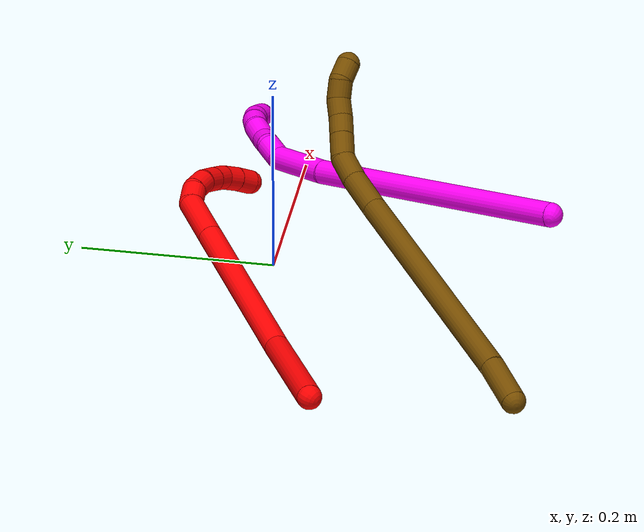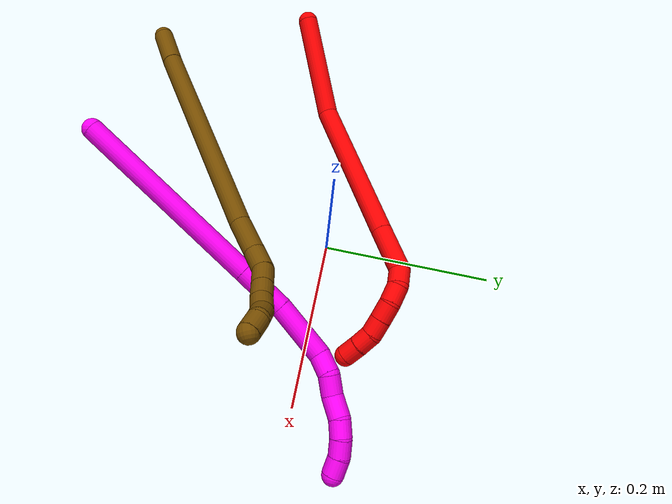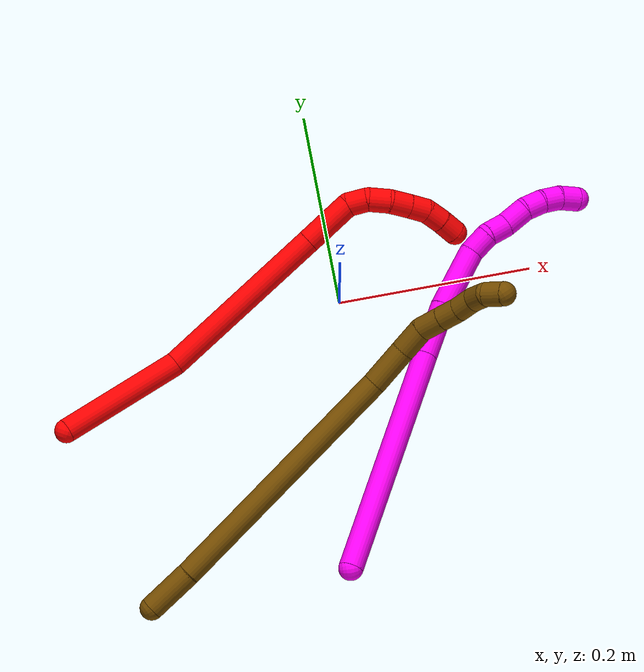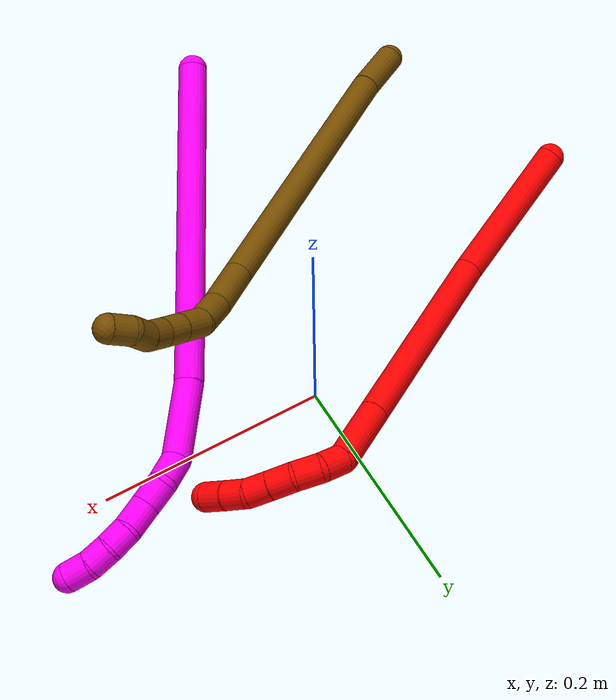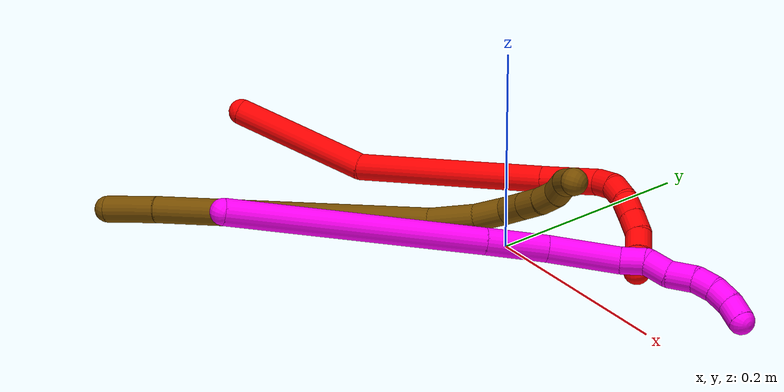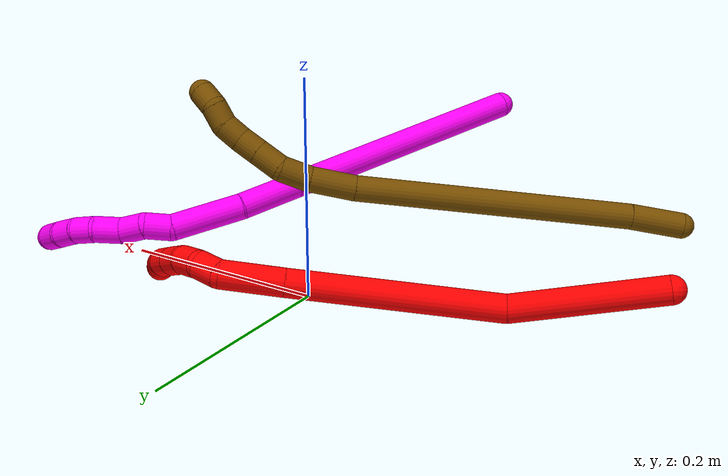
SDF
<sdf version="1.7">
 <world name="default">
  <model name="2">
   <static>0</static>
   <link name="2">
    <collision name="collision-cylinder-e_1_1_4">
     <pose>0.040327 0.018699 -0.050124 -2.78453 0.645927 -2.15261</pose>
     <geometry><cylinder><radius>0.0125</radius><length>0.133991</length></cylinder></geometry>
     <surface>
      <friction><ode><mu>1.16</mu><mu2>1.16</mu2><slip1>0</slip1><slip2>0</slip2></ode></friction>
      <contact><ode><kp>1e+06</kp><kd>1</kd><max_vel>0</max_vel><min_depth>0.001</min_depth></ode></contact>
     </surface>
    </collision>
    <visual name="visual-cylinder-e_1_1_4">
     <pose>0.040327 0.018699 -0.050124 -2.78453 0.645927 -2.15261</pose>
     <geometry><cylinder><radius>0.0125</radius><length>0.133991</length></cylinder></geometry>
     <material><ambient>1 0 0 1</ambient></material>
    </visual>
    <collision name="collision-cylinder-e_2_4_5">
     <pose>0.108208 0.071814 -0.181865 -2.74254 0.301584 -1.28879</pose>
     <geometry><cylinder><radius>0.0125</radius><length>0.185525</length></cylinder></geometry>
     <surface>
      <friction><ode><mu>1.16</mu><mu2>1.16</mu2><slip1>0</slip1><slip2>0</slip2></ode></friction>
      <contact><ode><kp>1e+06</kp><kd>1</kd><max_vel>0</max_vel><min_depth>0.001</min_depth></ode></contact>
     </surface>
    </collision>
    <visual name="visual-cylinder-e_2_4_5">
     <pose>0.108208 0.071814 -0.181865 -2.74254 0.301584 -1.28879</pose>
     <geometry><cylinder><radius>0.0125</radius><length>0.185525</length></cylinder></geometry>
     <material><ambient>1 0 0 1</ambient></material>
    </visual>
    <collision name="collision-cylinder-e_3_5_6">
     <pose>0.143556 0.116607 -0.287785 -2.73803 0.286842 -1.22942</pose>
     <geometry><cylinder><radius>0.0125</radius><length>0.055104</length></cylinder></geometry>
     <surface>
      <friction><ode><mu>1.16</mu><mu2>1.16</mu2><slip1>0</slip1><slip2>0</slip2></ode></friction>
      <contact><ode><kp>1e+06</kp><kd>1</kd><max_vel>0</max_vel><min_depth>0.001</min_depth></ode></contact>
     </surface>
    </collision>
    <visual name="visual-cylinder-e_3_5_6">
     <pose>0.143556 0.116607 -0.287785 -2.73803 0.286842 -1.22942</pose>
     <geometry><cylinder><radius>0.0125</radius><length>0.055104</length></cylinder></geometry>
     <material><ambient>1 0 0 1</ambient></material>
    </visual>
    <collision name="collision-cylinder-e_4_6_7">
     <pose>0.155656 0.134859 -0.317849 -2.20243 0.415483 -0.787399</pose>
     <geometry><cylinder><radius>0.0125</radius><length>0.021327</length></cylinder></geometry>
     <surface>
      <friction><ode><mu>1.16</mu><mu2>1.16</mu2><slip1>0</slip1><slip2>0</slip2></ode></friction>
      <contact><ode><kp>1e+06</kp><kd>1</kd><max_vel>0</max_vel><min_depth>0.001</min_depth></ode></contact>
     </surface>
    </collision>
    <visual name="visual-cylinder-e_4_6_7">
     <pose>0.155656 0.134859 -0.317849 -2.20243 0.415483 -0.787399</pose>
     <geometry><cylinder><radius>0.0125</radius><length>0.021327</length></cylinder></geometry>
     <material><ambient>1 0 0 1</ambient></material>
    </visual>
    <collision name="collision-cylinder-e_5_7_8">
     <pose>0.167758 0.150279 -0.326416 -1.92677 0.769457 -1.05496</pose>
     <geometry><cylinder><radius>0.0125</radius><length>0.022417</length></cylinder></geometry>
     <surface>
      <friction><ode><mu>1.16</mu><mu2>1.16</mu2><slip1>0</slip1><slip2>0</slip2></ode></friction>
      <contact><ode><kp>1e+06</kp><kd>1</kd><max_vel>0</max_vel><min_depth>0.001</min_depth></ode></contact>
     </surface>
    </collision>
    <visual name="visual-cylinder-e_5_7_8">
     <pose>0.167758 0.150279 -0.326416 -1.92677 0.769457 -1.05496</pose>
     <geometry><cylinder><radius>0.0125</radius><length>0.022417</length></cylinder></geometry>
     <material><ambient>1 0 0 1</ambient></material>
    </visual>
    <collision name="collision-cylinder-e_6_8_9">
     <pose>0.184715 0.163241 -0.33036 -1.77795 1.02727 -1.21477</pose>
     <geometry><cylinder><radius>0.0125</radius><length>0.021402</length></cylinder></geometry>
     <surface>
      <friction><ode><mu>1.16</mu><mu2>1.16</mu2><slip1>0</slip1><slip2>0</slip2></ode></friction>
      <contact><ode><kp>1e+06</kp><kd>1</kd><max_vel>0</max_vel><min_depth>0.001</min_depth></ode></contact>
     </surface>
    </collision>
    <visual name="visual-cylinder-e_6_8_9">
     <pose>0.184715 0.163241 -0.33036 -1.77795 1.02727 -1.21477</pose>
     <geometry><cylinder><radius>0.0125</radius><length>0.021402</length></cylinder></geometry>
     <material><ambient>1 0 0 1</ambient></material>
    </visual>
    <collision name="collision-cylinder-e_7_9_10">
     <pose>0.202538 0.173688 -0.332304 -1.72971 1.03917 -1.18198</pose>
     <geometry><cylinder><radius>0.0125</radius><length>0.020102</length></cylinder></geometry>
     <surface>
      <friction><ode><mu>1.16</mu><mu2>1.16</mu2><slip1>0</slip1><slip2>0</slip2></ode></friction>
      <contact><ode><kp>1e+06</kp><kd>1</kd><max_vel>0</max_vel><min_depth>0.001</min_depth></ode></contact>
     </surface>
    </collision>
    <visual name="visual-cylinder-e_7_9_10">
     <pose>0.202538 0.173688 -0.332304 -1.72971 1.03917 -1.18198</pose>
     <geometry><cylinder><radius>0.0125</radius><length>0.020102</length></cylinder></geometry>
     <material><ambient>1 0 0 1</ambient></material>
    </visual>
    <collision name="collision-cylinder-e_8_10_11">
     <pose>0.219758 0.183375 -0.330746 -1.10082 1.02282 -0.663351</pose>
     <geometry><cylinder><radius>0.0125</radius><length>0.020047</length></cylinder></geometry>
     <surface>
      <friction><ode><mu>1.16</mu><mu2>1.16</mu2><slip1>0</slip1><slip2>0</slip2></ode></friction>
      <contact><ode><kp>1e+06</kp><kd>1</kd><max_vel>0</max_vel><min_depth>0.001</min_depth></ode></contact>
     </surface>
    </collision>
    <visual name="visual-cylinder-e_8_10_11">
     <pose>0.219758 0.183375 -0.330746 -1.10082 1.02282 -0.663351</pose>
     <geometry><cylinder><radius>0.0125</radius><length>0.020047</length></cylinder></geometry>
     <material><ambient>1 0 0 1</ambient></material>
    </visual>
    <collision name="collision-cylinder-e_9_11_2">
     <pose>0.236997 0.192108 -0.32541 -0.941256 1.04442 -0.569653</pose>
     <geometry><cylinder><radius>0.0125</radius><length>0.020084</length></cylinder></geometry>
     <surface>
      <friction><ode><mu>1.16</mu><mu2>1.16</mu2><slip1>0</slip1><slip2>0</slip2></ode></friction>
      <contact><ode><kp>1e+06</kp><kd>1</kd><max_vel>0</max_vel><min_depth>0.001</min_depth></ode></contact>
     </surface>
    </collision>
    <visual name="visual-cylinder-e_9_11_2">
     <pose>0.236997 0.192108 -0.32541 -0.941256 1.04442 -0.569653</pose>
     <geometry><cylinder><radius>0.0125</radius><length>0.020084</length></cylinder></geometry>
     <material><ambient>1 0 0 1</ambient></material>
    </visual>
    <collision name="collision-sphere-2">
     <pose>0.24568 0.196187 -0.32244 0 -0 0</pose>
     <geometry><sphere><radius>0.0125</radius></sphere></geometry>
     <surface>
      <friction><ode><mu>1.16</mu><mu2>1.16</mu2><slip1>0</slip1><slip2>0</slip2></ode></friction>
      <contact><ode><kp>1e+06</kp><kd>1</kd><max_vel>0</max_vel><min_depth>0.001</min_depth></ode></contact>
     </surface>
    </collision>
    <visual name="visual-sphere-2">
     <pose>0.24568 0.196187 -0.32244 0 -0 0</pose>
     <geometry><sphere><radius>0.0125</radius></sphere></geometry>
     <material><ambient>1 0 0 1</ambient></material>
    </visual>
    <collision name="collision-sphere-11">
     <pose>0.228314 0.18803 -0.328381 0 -0 0</pose>
     <geometry><sphere><radius>0.0125</radius></sphere></geometry>
     <surface>
      <friction><ode><mu>1.16</mu><mu2>1.16</mu2><slip1>0</slip1><slip2>0</slip2></ode></friction>
      <contact><ode><kp>1e+06</kp><kd>1</kd><max_vel>0</max_vel><min_depth>0.001</min_depth></ode></contact>
     </surface>
    </collision>
    <visual name="visual-sphere-11">
     <pose>0.228314 0.18803 -0.328381 0 -0 0</pose>
     <geometry><sphere><radius>0.0125</radius></sphere></geometry>
     <material><ambient>1 0 0 1</ambient></material>
    </visual>
    <collision name="collision-sphere-10">
     <pose>0.211202 0.178719 -0.333111 0 -0 0</pose>
     <geometry><sphere><radius>0.0125</radius></sphere></geometry>
     <surface>
      <friction><ode><mu>1.16</mu><mu2>1.16</mu2><slip1>0</slip1><slip2>0</slip2></ode></friction>
      <contact><ode><kp>1e+06</kp><kd>1</kd><max_vel>0</max_vel><min_depth>0.001</min_depth></ode></contact>
     </surface>
    </collision>
    <visual name="visual-sphere-10">
     <pose>0.211202 0.178719 -0.333111 0 -0 0</pose>
     <geometry><sphere><radius>0.0125</radius></sphere></geometry>
     <material><ambient>1 0 0 1</ambient></material>
    </visual>
    <collision name="collision-sphere-9">
     <pose>0.193874 0.168657 -0.331498 0 -0 0</pose>
     <geometry><sphere><radius>0.0125</radius></sphere></geometry>
     <surface>
      <friction><ode><mu>1.16</mu><mu2>1.16</mu2><slip1>0</slip1><slip2>0</slip2></ode></friction>
      <contact><ode><kp>1e+06</kp><kd>1</kd><max_vel>0</max_vel><min_depth>0.001</min_depth></ode></contact>
     </surface>
    </collision>
    <visual name="visual-sphere-9">
     <pose>0.193874 0.168657 -0.331498 0 -0 0</pose>
     <geometry><sphere><radius>0.0125</radius></sphere></geometry>
     <material><ambient>1 0 0 1</ambient></material>
    </visual>
    <collision name="collision-sphere-4">
     <pose>0.080654 0.037398 -0.100249 0 -0 0</pose>
     <geometry><sphere><radius>0.0125</radius></sphere></geometry>
     <surface>
      <friction><ode><mu>1.16</mu><mu2>1.16</mu2><slip1>0</slip1><slip2>0</slip2></ode></friction>
      <contact><ode><kp>1e+06</kp><kd>1</kd><max_vel>0</max_vel><min_depth>0.001</min_depth></ode></contact>
     </surface>
    </collision>
    <visual name="visual-sphere-4">
     <pose>0.080654 0.037398 -0.100249 0 -0 0</pose>
     <geometry><sphere><radius>0.0125</radius></sphere></geometry>
     <material><ambient>1 0 0 1</ambient></material>
    </visual>
    <collision name="collision-sphere-1">
     <geometry><sphere><radius>0.0125</radius></sphere></geometry>
     <surface>
      <friction><ode><mu>1.16</mu><mu2>1.16</mu2><slip1>0</slip1><slip2>0</slip2></ode></friction>
      <contact><ode><kp>1e+06</kp><kd>1</kd><max_vel>0</max_vel><min_depth>0.001</min_depth></ode></contact>
     </surface>
    </collision>
    <visual name="visual-sphere-1">
     <geometry><sphere><radius>0.0125</radius></sphere></geometry>
     <material><ambient>1 0 0 1</ambient></material>
    </visual>
    <collision name="collision-sphere-8">
     <pose>0.175556 0.157825 -0.329221 0 -0 0</pose>
     <geometry><sphere><radius>0.0125</radius></sphere></geometry>
     <surface>
      <friction><ode><mu>1.16</mu><mu2>1.16</mu2><slip1>0</slip1><slip2>0</slip2></ode></friction>
      <contact><ode><kp>1e+06</kp><kd>1</kd><max_vel>0</max_vel><min_depth>0.001</min_depth></ode></contact>
     </surface>
    </collision>
    <visual name="visual-sphere-8">
     <pose>0.175556 0.157825 -0.329221 0 -0 0</pose>
     <geometry><sphere><radius>0.0125</radius></sphere></geometry>
     <material><ambient>1 0 0 1</ambient></material>
    </visual>
    <collision name="collision-sphere-5">
     <pose>0.135761 0.10623 -0.263481 0 -0 0</pose>
     <geometry><sphere><radius>0.0125</radius></sphere></geometry>
     <surface>
      <friction><ode><mu>1.16</mu><mu2>1.16</mu2><slip1>0</slip1><slip2>0</slip2></ode></friction>
      <contact><ode><kp>1e+06</kp><kd>1</kd><max_vel>0</max_vel><min_depth>0.001</min_depth></ode></contact>
     </surface>
    </collision>
    <visual name="visual-sphere-5">
     <pose>0.135761 0.10623 -0.263481 0 -0 0</pose>
     <geometry><sphere><radius>0.0125</radius></sphere></geometry>
     <material><ambient>1 0 0 1</ambient></material>
    </visual>
    <collision name="collision-sphere-6">
     <pose>0.151352 0.126985 -0.312088 0 -0 0</pose>
     <geometry><sphere><radius>0.0125</radius></sphere></geometry>
     <surface>
      <friction><ode><mu>1.16</mu><mu2>1.16</mu2><slip1>0</slip1><slip2>0</slip2></ode></friction>
      <contact><ode><kp>1e+06</kp><kd>1</kd><max_vel>0</max_vel><min_depth>0.001</min_depth></ode></contact>
     </surface>
    </collision>
    <visual name="visual-sphere-6">
     <pose>0.151352 0.126985 -0.312088 0 -0 0</pose>
     <geometry><sphere><radius>0.0125</radius></sphere></geometry>
     <material><ambient>1 0 0 1</ambient></material>
    </visual>
    <collision name="collision-sphere-7">
     <pose>0.15996 0.142733 -0.32361 0 -0 0</pose>
     <geometry><sphere><radius>0.0125</radius></sphere></geometry>
     <surface>
      <friction><ode><mu>1.16</mu><mu2>1.16</mu2><slip1>0</slip1><slip2>0</slip2></ode></friction>
      <contact><ode><kp>1e+06</kp><kd>1</kd><max_vel>0</max_vel><min_depth>0.001</min_depth></ode></contact>
     </surface>
    </collision>
    <visual name="visual-sphere-7">
     <pose>0.15996 0.142733 -0.32361 0 -0 0</pose>
     <geometry><sphere><radius>0.0125</radius></sphere></geometry>
     <material><ambient>1 0 0 1</ambient></material>
    </visual>
    <inertial>
     <pose>0.11532 0.086038 -0.194655 0 -0 0</pose>
     <mass>0.5</mass>
     <inertia>
      <ixx>-0.00057</ixx>
      <ixy>0</ixy>
      <ixz>0</ixz>
      <iyy>-0.00057</iyy>
      <iyz>0</iyz>
      <izz>-0.00059</izz>
     </inertia>
    </inertial>
   </link>
   <pose>-0.297897 -0.087503 0.045761 1.83597 0.919744 -0.310313</pose>
  </model>
  <model name="10">
   <static>0</static>
   <link name="10">
    <collision name="collision-cylinder-e_1_1_4">
     <pose>0.096606 0.048582 0.051706 -0.754259 0.937345 -0.395826</pose>
     <geometry><cylinder><radius>0.0125</radius><length>0.23972</length></cylinder></geometry>
     <surface>
      <friction><ode><mu>1.16</mu><mu2>1.16</mu2><slip1>0</slip1><slip2>0</slip2></ode></friction>
      <contact><ode><kp>1e+06</kp><kd>1</kd><max_vel>0</max_vel><min_depth>0.001</min_depth></ode></contact>
     </surface>
    </collision>
    <visual name="visual-cylinder-e_1_1_4">
     <pose>0.096606 0.048582 0.051706 -0.754259 0.937345 -0.395826</pose>
     <geometry><cylinder><radius>0.0125</radius><length>0.23972</length></cylinder></geometry>
     <material><ambient>1 0 0.964706 1</ambient></material>
    </visual>
    <collision name="collision-cylinder-e_2_4_5">
     <pose>0.216507 0.108697 0.116095 -0.737905 0.936391 -0.386192</pose>
     <geometry><cylinder><radius>0.0125</radius><length>0.057845</length></cylinder></geometry>
     <surface>
      <friction><ode><mu>1.16</mu><mu2>1.16</mu2><slip1>0</slip1><slip2>0</slip2></ode></friction>
      <contact><ode><kp>1e+06</kp><kd>1</kd><max_vel>0</max_vel><min_depth>0.001</min_depth></ode></contact>
     </surface>
    </collision>
    <visual name="visual-cylinder-e_2_4_5">
     <pose>0.216507 0.108697 0.116095 -0.737905 0.936391 -0.386192</pose>
     <geometry><cylinder><radius>0.0125</radius><length>0.057845</length></cylinder></geometry>
     <material><ambient>1 0 0.964706 1</ambient></material>
    </visual>
    <collision name="collision-cylinder-e_3_5_6">
     <pose>0.265158 0.13279 0.14757 -0.589241 0.842739 -0.270365</pose>
     <geometry><cylinder><radius>0.0125</radius><length>0.067936</length></cylinder></geometry>
     <surface>
      <friction><ode><mu>1.16</mu><mu2>1.16</mu2><slip1>0</slip1><slip2>0</slip2></ode></friction>
      <contact><ode><kp>1e+06</kp><kd>1</kd><max_vel>0</max_vel><min_depth>0.001</min_depth></ode></contact>
     </surface>
    </collision>
    <visual name="visual-cylinder-e_3_5_6">
     <pose>0.265158 0.13279 0.14757 -0.589241 0.842739 -0.270365</pose>
     <geometry><cylinder><radius>0.0125</radius><length>0.067936</length></cylinder></geometry>
     <material><ambient>1 0 0.964706 1</ambient></material>
    </visual>
    <collision name="collision-cylinder-e_4_6_7">
     <pose>0.295768 0.150888 0.176091 -0.517395 0.438845 -0.117894</pose>
     <geometry><cylinder><radius>0.0125</radius><length>0.024733</length></cylinder></geometry>
     <surface>
      <friction><ode><mu>1.16</mu><mu2>1.16</mu2><slip1>0</slip1><slip2>0</slip2></ode></friction>
      <contact><ode><kp>1e+06</kp><kd>1</kd><max_vel>0</max_vel><min_depth>0.001</min_depth></ode></contact>
     </surface>
    </collision>
    <visual name="visual-cylinder-e_4_6_7">
     <pose>0.295768 0.150888 0.176091 -0.517395 0.438845 -0.117894</pose>
     <geometry><cylinder><radius>0.0125</radius><length>0.024733</length></cylinder></geometry>
     <material><ambient>1 0 0.964706 1</ambient></material>
    </visual>
    <collision name="collision-cylinder-e_5_7_8">
     <pose>0.307004 0.156447 0.195664 -0.00213 0.546003 -0.000596</pose>
     <geometry><cylinder><radius>0.0125</radius><length>0.023038</length></cylinder></geometry>
     <surface>
      <friction><ode><mu>1.16</mu><mu2>1.16</mu2><slip1>0</slip1><slip2>0</slip2></ode></friction>
      <contact><ode><kp>1e+06</kp><kd>1</kd><max_vel>0</max_vel><min_depth>0.001</min_depth></ode></contact>
     </surface>
    </collision>
    <visual name="visual-cylinder-e_5_7_8">
     <pose>0.307004 0.156447 0.195664 -0.00213 0.546003 -0.000596</pose>
     <geometry><cylinder><radius>0.0125</radius><length>0.023038</length></cylinder></geometry>
     <material><ambient>1 0 0.964706 1</ambient></material>
    </visual>
    <collision name="collision-cylinder-e_6_8_9">
     <pose>0.318321 0.16061 0.216622 -0.356759 0.42269 -0.077326</pose>
     <geometry><cylinder><radius>0.0125</radius><length>0.02601</length></cylinder></geometry>
     <surface>
      <friction><ode><mu>1.16</mu><mu2>1.16</mu2><slip1>0</slip1><slip2>0</slip2></ode></friction>
      <contact><ode><kp>1e+06</kp><kd>1</kd><max_vel>0</max_vel><min_depth>0.001</min_depth></ode></contact>
     </surface>
    </collision>
    <visual name="visual-cylinder-e_6_8_9">
     <pose>0.318321 0.16061 0.216622 -0.356759 0.42269 -0.077326</pose>
     <geometry><cylinder><radius>0.0125</radius><length>0.02601</length></cylinder></geometry>
     <material><ambient>1 0 0.964706 1</ambient></material>
    </visual>
    <collision name="collision-cylinder-e_7_9_10">
     <pose>0.327547 0.164982 0.237034 -0.024768 0.396279 -0.004973</pose>
     <geometry><cylinder><radius>0.0125</radius><length>0.020166</length></cylinder></geometry>
     <surface>
      <friction><ode><mu>1.16</mu><mu2>1.16</mu2><slip1>0</slip1><slip2>0</slip2></ode></friction>
      <contact><ode><kp>1e+06</kp><kd>1</kd><max_vel>0</max_vel><min_depth>0.001</min_depth></ode></contact>
     </surface>
    </collision>
    <visual name="visual-cylinder-e_7_9_10">
     <pose>0.327547 0.164982 0.237034 -0.024768 0.396279 -0.004973</pose>
     <geometry><cylinder><radius>0.0125</radius><length>0.020166</length></cylinder></geometry>
     <material><ambient>1 0 0.964706 1</ambient></material>
    </visual>
    <collision name="collision-cylinder-e_8_10_11">
     <pose>0.335255 0.163082 0.255354 0.231924 0.390534 0.04607</pose>
     <geometry><cylinder><radius>0.0125</radius><length>0.020047</length></cylinder></geometry>
     <surface>
      <friction><ode><mu>1.16</mu><mu2>1.16</mu2><slip1>0</slip1><slip2>0</slip2></ode></friction>
      <contact><ode><kp>1e+06</kp><kd>1</kd><max_vel>0</max_vel><min_depth>0.001</min_depth></ode></contact>
     </surface>
    </collision>
    <visual name="visual-cylinder-e_8_10_11">
     <pose>0.335255 0.163082 0.255354 0.231924 0.390534 0.04607</pose>
     <geometry><cylinder><radius>0.0125</radius><length>0.020047</length></cylinder></geometry>
     <material><ambient>1 0 0.964706 1</ambient></material>
    </visual>
    <collision name="collision-cylinder-e_9_11_2">
     <pose>0.341284 0.1567 0.273437 0.438687 0.217609 0.048694</pose>
     <geometry><cylinder><radius>0.0125</radius><length>0.020505</length></cylinder></geometry>
     <surface>
      <friction><ode><mu>1.16</mu><mu2>1.16</mu2><slip1>0</slip1><slip2>0</slip2></ode></friction>
      <contact><ode><kp>1e+06</kp><kd>1</kd><max_vel>0</max_vel><min_depth>0.001</min_depth></ode></contact>
     </surface>
    </collision>
    <visual name="visual-cylinder-e_9_11_2">
     <pose>0.341284 0.1567 0.273437 0.438687 0.217609 0.048694</pose>
     <geometry><cylinder><radius>0.0125</radius><length>0.020505</length></cylinder></geometry>
     <material><ambient>1 0 0.964706 1</ambient></material>
    </visual>
    <collision name="collision-sphere-2">
     <pose>0.343498 0.152448 0.2825 0 -0 0</pose>
     <geometry><sphere><radius>0.0125</radius></sphere></geometry>
     <surface>
      <friction><ode><mu>1.16</mu><mu2>1.16</mu2><slip1>0</slip1><slip2>0</slip2></ode></friction>
      <contact><ode><kp>1e+06</kp><kd>1</kd><max_vel>0</max_vel><min_depth>0.001</min_depth></ode></contact>
     </surface>
    </collision>
    <visual name="visual-sphere-2">
     <pose>0.343498 0.152448 0.2825 0 -0 0</pose>
     <geometry><sphere><radius>0.0125</radius></sphere></geometry>
     <material><ambient>1 0 0.964706 1</ambient></material>
    </visual>
    <collision name="collision-sphere-11">
     <pose>0.339071 0.160952 0.264374 0 -0 0</pose>
     <geometry><sphere><radius>0.0125</radius></sphere></geometry>
     <surface>
      <friction><ode><mu>1.16</mu><mu2>1.16</mu2><slip1>0</slip1><slip2>0</slip2></ode></friction>
      <contact><ode><kp>1e+06</kp><kd>1</kd><max_vel>0</max_vel><min_depth>0.001</min_depth></ode></contact>
     </surface>
    </collision>
    <visual name="visual-sphere-11">
     <pose>0.339071 0.160952 0.264374 0 -0 0</pose>
     <geometry><sphere><radius>0.0125</radius></sphere></geometry>
     <material><ambient>1 0 0.964706 1</ambient></material>
    </visual>
    <collision name="collision-sphere-10">
     <pose>0.331439 0.165212 0.246333 0 -0 0</pose>
     <geometry><sphere><radius>0.0125</radius></sphere></geometry>
     <surface>
      <friction><ode><mu>1.16</mu><mu2>1.16</mu2><slip1>0</slip1><slip2>0</slip2></ode></friction>
      <contact><ode><kp>1e+06</kp><kd>1</kd><max_vel>0</max_vel><min_depth>0.001</min_depth></ode></contact>
     </surface>
    </collision>
    <visual name="visual-sphere-10">
     <pose>0.331439 0.165212 0.246333 0 -0 0</pose>
     <geometry><sphere><radius>0.0125</radius></sphere></geometry>
     <material><ambient>1 0 0.964706 1</ambient></material>
    </visual>
    <collision name="collision-sphere-9">
     <pose>0.323655 0.164752 0.227735 0 -0 0</pose>
     <geometry><sphere><radius>0.0125</radius></sphere></geometry>
     <surface>
      <friction><ode><mu>1.16</mu><mu2>1.16</mu2><slip1>0</slip1><slip2>0</slip2></ode></friction>
      <contact><ode><kp>1e+06</kp><kd>1</kd><max_vel>0</max_vel><min_depth>0.001</min_depth></ode></contact>
     </surface>
    </collision>
    <visual name="visual-sphere-9">
     <pose>0.323655 0.164752 0.227735 0 -0 0</pose>
     <geometry><sphere><radius>0.0125</radius></sphere></geometry>
     <material><ambient>1 0 0.964706 1</ambient></material>
    </visual>
    <collision name="collision-sphere-4">
     <pose>0.193212 0.097164 0.103412 0 -0 0</pose>
     <geometry><sphere><radius>0.0125</radius></sphere></geometry>
     <surface>
      <friction><ode><mu>1.16</mu><mu2>1.16</mu2><slip1>0</slip1><slip2>0</slip2></ode></friction>
      <contact><ode><kp>1e+06</kp><kd>1</kd><max_vel>0</max_vel><min_depth>0.001</min_depth></ode></contact>
     </surface>
    </collision>
    <visual name="visual-sphere-4">
     <pose>0.193212 0.097164 0.103412 0 -0 0</pose>
     <geometry><sphere><radius>0.0125</radius></sphere></geometry>
     <material><ambient>1 0 0.964706 1</ambient></material>
    </visual>
    <collision name="collision-sphere-1">
     <geometry><sphere><radius>0.0125</radius></sphere></geometry>
     <surface>
      <friction><ode><mu>1.16</mu><mu2>1.16</mu2><slip1>0</slip1><slip2>0</slip2></ode></friction>
      <contact><ode><kp>1e+06</kp><kd>1</kd><max_vel>0</max_vel><min_depth>0.001</min_depth></ode></contact>
     </surface>
    </collision>
    <visual name="visual-sphere-1">
     <geometry><sphere><radius>0.0125</radius></sphere></geometry>
     <material><ambient>1 0 0.964706 1</ambient></material>
    </visual>
    <collision name="collision-sphere-8">
     <pose>0.312986 0.156468 0.205508 0 -0 0</pose>
     <geometry><sphere><radius>0.0125</radius></sphere></geometry>
     <surface>
      <friction><ode><mu>1.16</mu><mu2>1.16</mu2><slip1>0</slip1><slip2>0</slip2></ode></friction>
      <contact><ode><kp>1e+06</kp><kd>1</kd><max_vel>0</max_vel><min_depth>0.001</min_depth></ode></contact>
     </surface>
    </collision>
    <visual name="visual-sphere-8">
     <pose>0.312986 0.156468 0.205508 0 -0 0</pose>
     <geometry><sphere><radius>0.0125</radius></sphere></geometry>
     <material><ambient>1 0 0.964706 1</ambient></material>
    </visual>
    <collision name="collision-sphere-5">
     <pose>0.239802 0.120229 0.128779 0 -0 0</pose>
     <geometry><sphere><radius>0.0125</radius></sphere></geometry>
     <surface>
      <friction><ode><mu>1.16</mu><mu2>1.16</mu2><slip1>0</slip1><slip2>0</slip2></ode></friction>
      <contact><ode><kp>1e+06</kp><kd>1</kd><max_vel>0</max_vel><min_depth>0.001</min_depth></ode></contact>
     </surface>
    </collision>
    <visual name="visual-sphere-5">
     <pose>0.239802 0.120229 0.128779 0 -0 0</pose>
     <geometry><sphere><radius>0.0125</radius></sphere></geometry>
     <material><ambient>1 0 0.964706 1</ambient></material>
    </visual>
    <collision name="collision-sphere-6">
     <pose>0.290514 0.145351 0.166361 0 -0 0</pose>
     <geometry><sphere><radius>0.0125</radius></sphere></geometry>
     <surface>
      <friction><ode><mu>1.16</mu><mu2>1.16</mu2><slip1>0</slip1><slip2>0</slip2></ode></friction>
      <contact><ode><kp>1e+06</kp><kd>1</kd><max_vel>0</max_vel><min_depth>0.001</min_depth></ode></contact>
     </surface>
    </collision>
    <visual name="visual-sphere-6">
     <pose>0.290514 0.145351 0.166361 0 -0 0</pose>
     <geometry><sphere><radius>0.0125</radius></sphere></geometry>
     <material><ambient>1 0 0.964706 1</ambient></material>
    </visual>
    <collision name="collision-sphere-7">
     <pose>0.301023 0.156426 0.18582 0 -0 0</pose>
     <geometry><sphere><radius>0.0125</radius></sphere></geometry>
     <surface>
      <friction><ode><mu>1.16</mu><mu2>1.16</mu2><slip1>0</slip1><slip2>0</slip2></ode></friction>
      <contact><ode><kp>1e+06</kp><kd>1</kd><max_vel>0</max_vel><min_depth>0.001</min_depth></ode></contact>
     </surface>
    </collision>
    <visual name="visual-sphere-7">
     <pose>0.301023 0.156426 0.18582 0 -0 0</pose>
     <geometry><sphere><radius>0.0125</radius></sphere></geometry>
     <material><ambient>1 0 0.964706 1</ambient></material>
    </visual>
    <inertial>
     <pose>0.193375 0.096556 0.118278 0 -0 0</pose>
     <mass>0.5</mass>
     <inertia>
      <ixx>0.000424</ixx>
      <ixy>0</ixy>
      <ixz>0</ixz>
      <iyy>0.000816</iyy>
      <iyz>0</iyz>
      <izz>-0.001439</izz>
     </inertia>
    </inertial>
   </link>
   <pose>-0.043042 -0.287502 0.116754 1.47276 0.731134 1.46728</pose>
  </model>
  <model name="12">
   <static>0</static>
   <link name="12">
    <collision name="collision-cylinder-e_1_1_4">
     <pose>0.005715 -0.004884 -0.024415 2.94417 0.225631 1.70496</pose>
     <geometry><cylinder><radius>0.0125</radius><length>0.051093</length></cylinder></geometry>
     <surface>
      <friction><ode><mu>1.16</mu><mu2>1.16</mu2><slip1>0</slip1><slip2>0</slip2></ode></friction>
      <contact><ode><kp>1e+06</kp><kd>1</kd><max_vel>0</max_vel><min_depth>0.001</min_depth></ode></contact>
     </surface>
    </collision>
    <visual name="visual-cylinder-e_1_1_4">
     <pose>0.005715 -0.004884 -0.024415 2.94417 0.225631 1.70496</pose>
     <geometry><cylinder><radius>0.0125</radius><length>0.051093</length></cylinder></geometry>
     <material><ambient>0.466667 0.301961 0 1</ambient></material>
    </visual>
    <collision name="collision-cylinder-e_2_4_5">
     <pose>0.044571 -0.025499 -0.177542 3.01998 0.250221 2.2399</pose>
     <geometry><cylinder><radius>0.0125</radius><length>0.267674</length></cylinder></geometry>
     <surface>
      <friction><ode><mu>1.16</mu><mu2>1.16</mu2><slip1>0</slip1><slip2>0</slip2></ode></friction>
      <contact><ode><kp>1e+06</kp><kd>1</kd><max_vel>0</max_vel><min_depth>0.001</min_depth></ode></contact>
     </surface>
    </collision>
    <visual name="visual-cylinder-e_2_4_5">
     <pose>0.044571 -0.025499 -0.177542 3.01998 0.250221 2.2399</pose>
     <geometry><cylinder><radius>0.0125</radius><length>0.267674</length></cylinder></geometry>
     <material><ambient>0.466667 0.301961 0 1</ambient></material>
    </visual>
    <collision name="collision-cylinder-e_3_5_6">
     <pose>0.084974 -0.045778 -0.326682 2.92252 0.33402 1.98553</pose>
     <geometry><cylinder><radius>0.0125</radius><length>0.044307</length></cylinder></geometry>
     <surface>
      <friction><ode><mu>1.16</mu><mu2>1.16</mu2><slip1>0</slip1><slip2>0</slip2></ode></friction>
      <contact><ode><kp>1e+06</kp><kd>1</kd><max_vel>0</max_vel><min_depth>0.001</min_depth></ode></contact>
     </surface>
    </collision>
    <visual name="visual-cylinder-e_3_5_6">
     <pose>0.084974 -0.045778 -0.326682 2.92252 0.33402 1.98553</pose>
     <geometry><cylinder><radius>0.0125</radius><length>0.044307</length></cylinder></geometry>
     <material><ambient>0.466667 0.301961 0 1</ambient></material>
    </visual>
    <collision name="collision-cylinder-e_4_6_7">
     <pose>0.097342 -0.055374 -0.359731 2.76111 0.359288 1.51217</pose>
     <geometry><cylinder><radius>0.0125</radius><length>0.029038</length></cylinder></geometry>
     <surface>
      <friction><ode><mu>1.16</mu><mu2>1.16</mu2><slip1>0</slip1><slip2>0</slip2></ode></friction>
      <contact><ode><kp>1e+06</kp><kd>1</kd><max_vel>0</max_vel><min_depth>0.001</min_depth></ode></contact>
     </surface>
    </collision>
    <visual name="visual-cylinder-e_4_6_7">
     <pose>0.097342 -0.055374 -0.359731 2.76111 0.359288 1.51217</pose>
     <geometry><cylinder><radius>0.0125</radius><length>0.029038</length></cylinder></geometry>
     <material><ambient>0.466667 0.301961 0 1</ambient></material>
    </visual>
    <collision name="collision-cylinder-e_5_7_8">
     <pose>0.103319 -0.068182 -0.38244 2.48596 0.068355 0.200398</pose>
     <geometry><cylinder><radius>0.0125</radius><length>0.025517</length></cylinder></geometry>
     <surface>
      <friction><ode><mu>1.16</mu><mu2>1.16</mu2><slip1>0</slip1><slip2>0</slip2></ode></friction>
      <contact><ode><kp>1e+06</kp><kd>1</kd><max_vel>0</max_vel><min_depth>0.001</min_depth></ode></contact>
     </surface>
    </collision>
    <visual name="visual-cylinder-e_5_7_8">
     <pose>0.103319 -0.068182 -0.38244 2.48596 0.068355 0.200398</pose>
     <geometry><cylinder><radius>0.0125</radius><length>0.025517</length></cylinder></geometry>
     <material><ambient>0.466667 0.301961 0 1</ambient></material>
    </visual>
    <collision name="collision-cylinder-e_6_8_9">
     <pose>0.104879 -0.082367 -0.400889 2.48631 0.065277 0.191533</pose>
     <geometry><cylinder><radius>0.0125</radius><length>0.02113</length></cylinder></geometry>
     <surface>
      <friction><ode><mu>1.16</mu><mu2>1.16</mu2><slip1>0</slip1><slip2>0</slip2></ode></friction>
      <contact><ode><kp>1e+06</kp><kd>1</kd><max_vel>0</max_vel><min_depth>0.001</min_depth></ode></contact>
     </surface>
    </collision>
    <visual name="visual-cylinder-e_6_8_9">
     <pose>0.104879 -0.082367 -0.400889 2.48631 0.065277 0.191533</pose>
     <geometry><cylinder><radius>0.0125</radius><length>0.02113</length></cylinder></geometry>
     <material><ambient>0.466667 0.301961 0 1</ambient></material>
    </visual>
    <collision name="collision-cylinder-e_7_9_10">
     <pose>0.107453 -0.095518 -0.416677 2.40581 0.185877 0.47453</pose>
     <geometry><cylinder><radius>0.0125</radius><length>0.020395</length></cylinder></geometry>
     <surface>
      <friction><ode><mu>1.16</mu><mu2>1.16</mu2><slip1>0</slip1><slip2>0</slip2></ode></friction>
      <contact><ode><kp>1e+06</kp><kd>1</kd><max_vel>0</max_vel><min_depth>0.001</min_depth></ode></contact>
     </surface>
    </collision>
    <visual name="visual-cylinder-e_7_9_10">
     <pose>0.107453 -0.095518 -0.416677 2.40581 0.185877 0.47453</pose>
     <geometry><cylinder><radius>0.0125</radius><length>0.020395</length></cylinder></geometry>
     <material><ambient>0.466667 0.301961 0 1</ambient></material>
    </visual>
    <collision name="collision-cylinder-e_8_10_11">
     <pose>0.110266 -0.111194 -0.428731 2.04772 0.091894 0.150739</pose>
     <geometry><cylinder><radius>0.0125</radius><length>0.020233</length></cylinder></geometry>
     <surface>
      <friction><ode><mu>1.16</mu><mu2>1.16</mu2><slip1>0</slip1><slip2>0</slip2></ode></friction>
      <contact><ode><kp>1e+06</kp><kd>1</kd><max_vel>0</max_vel><min_depth>0.001</min_depth></ode></contact>
     </surface>
    </collision>
    <visual name="visual-cylinder-e_8_10_11">
     <pose>0.110266 -0.111194 -0.428731 2.04772 0.091894 0.150739</pose>
     <geometry><cylinder><radius>0.0125</radius><length>0.020233</length></cylinder></geometry>
     <material><ambient>0.466667 0.301961 0 1</ambient></material>
    </visual>
    <collision name="collision-cylinder-e_9_11_2">
     <pose>0.10814 -0.127495 -0.439901 2.29832 -0.300848 -0.651744</pose>
     <geometry><cylinder><radius>0.0125</radius><length>0.020613</length></cylinder></geometry>
     <surface>
      <friction><ode><mu>1.16</mu><mu2>1.16</mu2><slip1>0</slip1><slip2>0</slip2></ode></friction>
      <contact><ode><kp>1e+06</kp><kd>1</kd><max_vel>0</max_vel><min_depth>0.001</min_depth></ode></contact>
     </surface>
    </collision>
    <visual name="visual-cylinder-e_9_11_2">
     <pose>0.10814 -0.127495 -0.439901 2.29832 -0.300848 -0.651744</pose>
     <geometry><cylinder><radius>0.0125</radius><length>0.020613</length></cylinder></geometry>
     <material><ambient>0.466667 0.301961 0 1</ambient></material>
    </visual>
    <collision name="collision-sphere-2">
     <pose>0.105086 -0.134846 -0.446447 0 -0 0</pose>
     <geometry><sphere><radius>0.0125</radius></sphere></geometry>
     <surface>
      <friction><ode><mu>1.16</mu><mu2>1.16</mu2><slip1>0</slip1><slip2>0</slip2></ode></friction>
      <contact><ode><kp>1e+06</kp><kd>1</kd><max_vel>0</max_vel><min_depth>0.001</min_depth></ode></contact>
     </surface>
    </collision>
    <visual name="visual-sphere-2">
     <pose>0.105086 -0.134846 -0.446447 0 -0 0</pose>
     <geometry><sphere><radius>0.0125</radius></sphere></geometry>
     <material><ambient>0.466667 0.301961 0 1</ambient></material>
    </visual>
    <collision name="collision-sphere-11">
     <pose>0.111194 -0.120143 -0.433355 0 -0 0</pose>
     <geometry><sphere><radius>0.0125</radius></sphere></geometry>
     <surface>
      <friction><ode><mu>1.16</mu><mu2>1.16</mu2><slip1>0</slip1><slip2>0</slip2></ode></friction>
      <contact><ode><kp>1e+06</kp><kd>1</kd><max_vel>0</max_vel><min_depth>0.001</min_depth></ode></contact>
     </surface>
    </collision>
    <visual name="visual-sphere-11">
     <pose>0.111194 -0.120143 -0.433355 0 -0 0</pose>
     <geometry><sphere><radius>0.0125</radius></sphere></geometry>
     <material><ambient>0.466667 0.301961 0 1</ambient></material>
    </visual>
    <collision name="collision-sphere-10">
     <pose>0.109338 -0.102244 -0.424107 0 -0 0</pose>
     <geometry><sphere><radius>0.0125</radius></sphere></geometry>
     <surface>
      <friction><ode><mu>1.16</mu><mu2>1.16</mu2><slip1>0</slip1><slip2>0</slip2></ode></friction>
      <contact><ode><kp>1e+06</kp><kd>1</kd><max_vel>0</max_vel><min_depth>0.001</min_depth></ode></contact>
     </surface>
    </collision>
    <visual name="visual-sphere-10">
     <pose>0.109338 -0.102244 -0.424107 0 -0 0</pose>
     <geometry><sphere><radius>0.0125</radius></sphere></geometry>
     <material><ambient>0.466667 0.301961 0 1</ambient></material>
    </visual>
    <collision name="collision-sphere-9">
     <pose>0.105569 -0.088791 -0.409248 0 -0 0</pose>
     <geometry><sphere><radius>0.0125</radius></sphere></geometry>
     <surface>
      <friction><ode><mu>1.16</mu><mu2>1.16</mu2><slip1>0</slip1><slip2>0</slip2></ode></friction>
      <contact><ode><kp>1e+06</kp><kd>1</kd><max_vel>0</max_vel><min_depth>0.001</min_depth></ode></contact>
     </surface>
    </collision>
    <visual name="visual-sphere-9">
     <pose>0.105569 -0.088791 -0.409248 0 -0 0</pose>
     <geometry><sphere><radius>0.0125</radius></sphere></geometry>
     <material><ambient>0.466667 0.301961 0 1</ambient></material>
    </visual>
    <collision name="collision-sphere-4">
     <pose>0.011431 -0.009767 -0.04883 0 -0 0</pose>
     <geometry><sphere><radius>0.0125</radius></sphere></geometry>
     <surface>
      <friction><ode><mu>1.16</mu><mu2>1.16</mu2><slip1>0</slip1><slip2>0</slip2></ode></friction>
      <contact><ode><kp>1e+06</kp><kd>1</kd><max_vel>0</max_vel><min_depth>0.001</min_depth></ode></contact>
     </surface>
    </collision>
    <visual name="visual-sphere-4">
     <pose>0.011431 -0.009767 -0.04883 0 -0 0</pose>
     <geometry><sphere><radius>0.0125</radius></sphere></geometry>
     <material><ambient>0.466667 0.301961 0 1</ambient></material>
    </visual>
    <collision name="collision-sphere-1">
     <geometry><sphere><radius>0.0125</radius></sphere></geometry>
     <surface>
      <friction><ode><mu>1.16</mu><mu2>1.16</mu2><slip1>0</slip1><slip2>0</slip2></ode></friction>
      <contact><ode><kp>1e+06</kp><kd>1</kd><max_vel>0</max_vel><min_depth>0.001</min_depth></ode></contact>
     </surface>
    </collision>
    <visual name="visual-sphere-1">
     <geometry><sphere><radius>0.0125</radius></sphere></geometry>
     <material><ambient>0.466667 0.301961 0 1</ambient></material>
    </visual>
    <collision name="collision-sphere-8">
     <pose>0.10419 -0.075942 -0.39253 0 -0 0</pose>
     <geometry><sphere><radius>0.0125</radius></sphere></geometry>
     <surface>
      <friction><ode><mu>1.16</mu><mu2>1.16</mu2><slip1>0</slip1><slip2>0</slip2></ode></friction>
      <contact><ode><kp>1e+06</kp><kd>1</kd><max_vel>0</max_vel><min_depth>0.001</min_depth></ode></contact>
     </surface>
    </collision>
    <visual name="visual-sphere-8">
     <pose>0.10419 -0.075942 -0.39253 0 -0 0</pose>
     <geometry><sphere><radius>0.0125</radius></sphere></geometry>
     <material><ambient>0.466667 0.301961 0 1</ambient></material>
    </visual>
    <collision name="collision-sphere-5">
     <pose>0.077712 -0.04123 -0.306253 0 -0 0</pose>
     <geometry><sphere><radius>0.0125</radius></sphere></geometry>
     <surface>
      <friction><ode><mu>1.16</mu><mu2>1.16</mu2><slip1>0</slip1><slip2>0</slip2></ode></friction>
      <contact><ode><kp>1e+06</kp><kd>1</kd><max_vel>0</max_vel><min_depth>0.001</min_depth></ode></contact>
     </surface>
    </collision>
    <visual name="visual-sphere-5">
     <pose>0.077712 -0.04123 -0.306253 0 -0 0</pose>
     <geometry><sphere><radius>0.0125</radius></sphere></geometry>
     <material><ambient>0.466667 0.301961 0 1</ambient></material>
    </visual>
    <collision name="collision-sphere-6">
     <pose>0.092237 -0.050326 -0.347111 0 -0 0</pose>
     <geometry><sphere><radius>0.0125</radius></sphere></geometry>
     <surface>
      <friction><ode><mu>1.16</mu><mu2>1.16</mu2><slip1>0</slip1><slip2>0</slip2></ode></friction>
      <contact><ode><kp>1e+06</kp><kd>1</kd><max_vel>0</max_vel><min_depth>0.001</min_depth></ode></contact>
     </surface>
    </collision>
    <visual name="visual-sphere-6">
     <pose>0.092237 -0.050326 -0.347111 0 -0 0</pose>
     <geometry><sphere><radius>0.0125</radius></sphere></geometry>
     <material><ambient>0.466667 0.301961 0 1</ambient></material>
    </visual>
    <collision name="collision-sphere-7">
     <pose>0.102447 -0.060422 -0.372351 0 -0 0</pose>
     <geometry><sphere><radius>0.0125</radius></sphere></geometry>
     <surface>
      <friction><ode><mu>1.16</mu><mu2>1.16</mu2><slip1>0</slip1><slip2>0</slip2></ode></friction>
      <contact><ode><kp>1e+06</kp><kd>1</kd><max_vel>0</max_vel><min_depth>0.001</min_depth></ode></contact>
     </surface>
    </collision>
    <visual name="visual-sphere-7">
     <pose>0.102447 -0.060422 -0.372351 0 -0 0</pose>
     <geometry><sphere><radius>0.0125</radius></sphere></geometry>
     <material><ambient>0.466667 0.301961 0 1</ambient></material>
    </visual>
    <inertial>
     <pose>0.060636 -0.042034 -0.236322 0 -0 0</pose>
     <mass>0.5</mass>
     <inertia>
      <ixx>0.000291</ixx>
      <ixy>0</ixy>
      <ixz>0</ixz>
      <iyy>0.002266</iyy>
      <iyz>0</iyz>
      <izz>-0.00024</izz>
     </inertia>
    </inertial>
   </link>
   <pose>-0.245111 -0.278824 0.027306 -1.47947 -0.391989 1.95335</pose>
  </model>
 </world>
</sdf>
